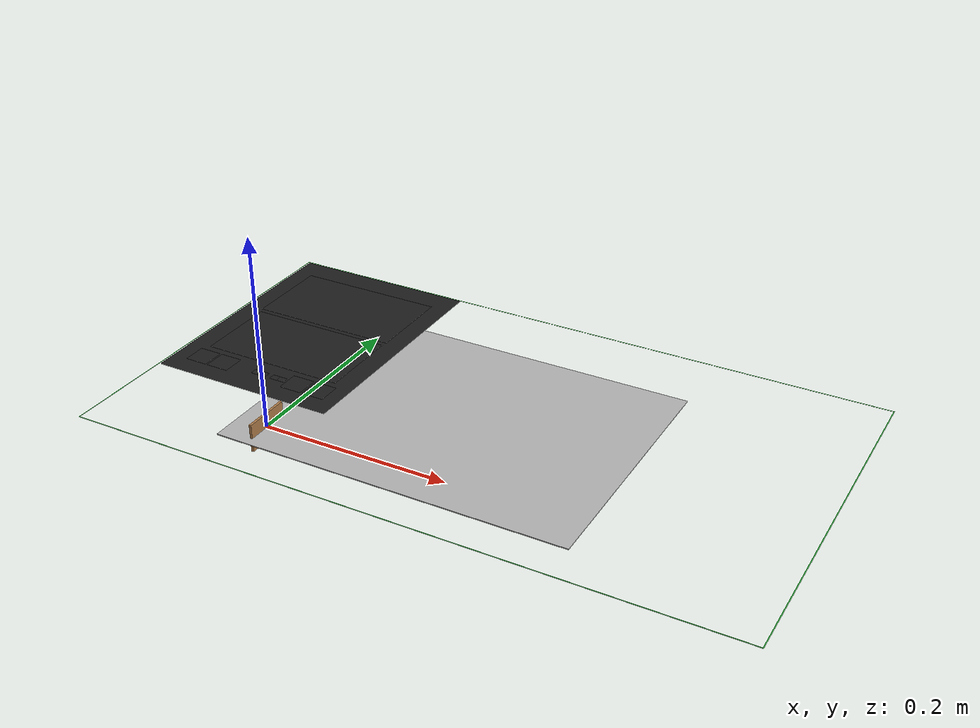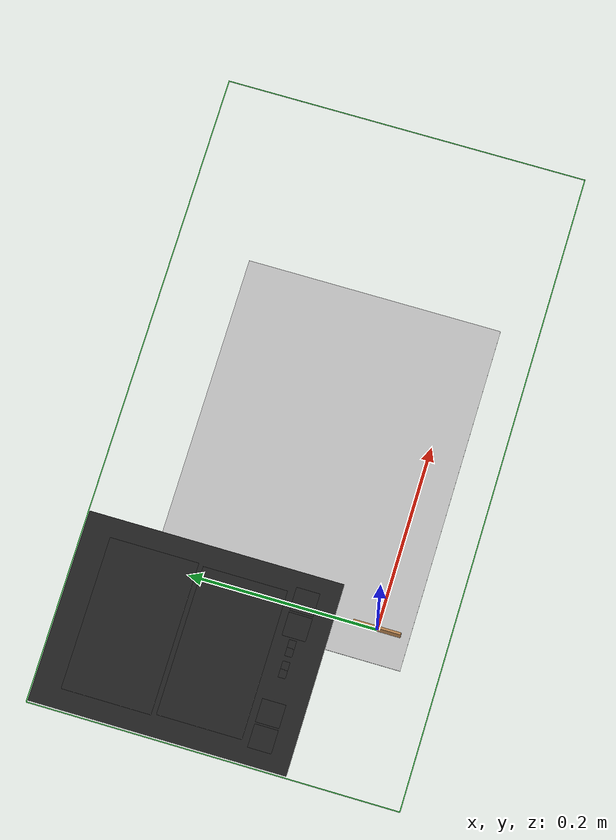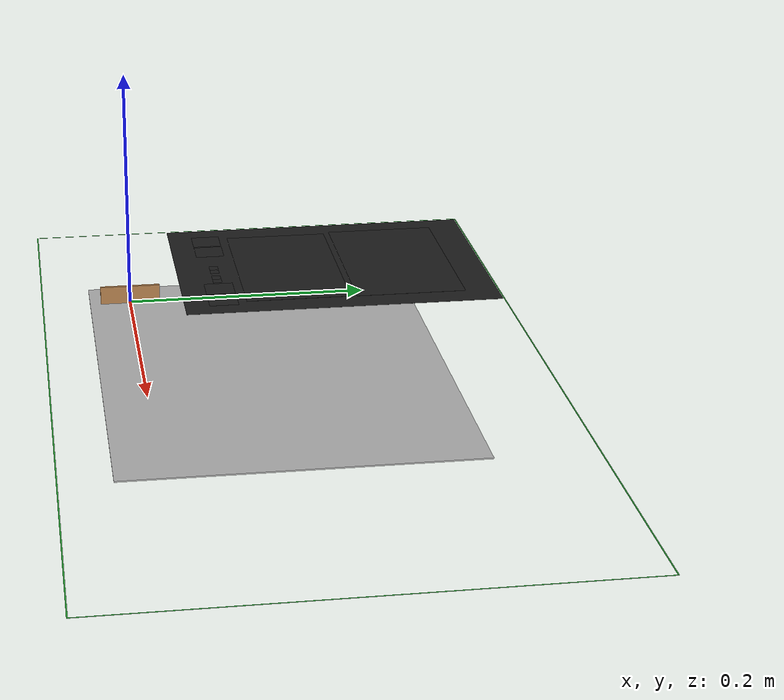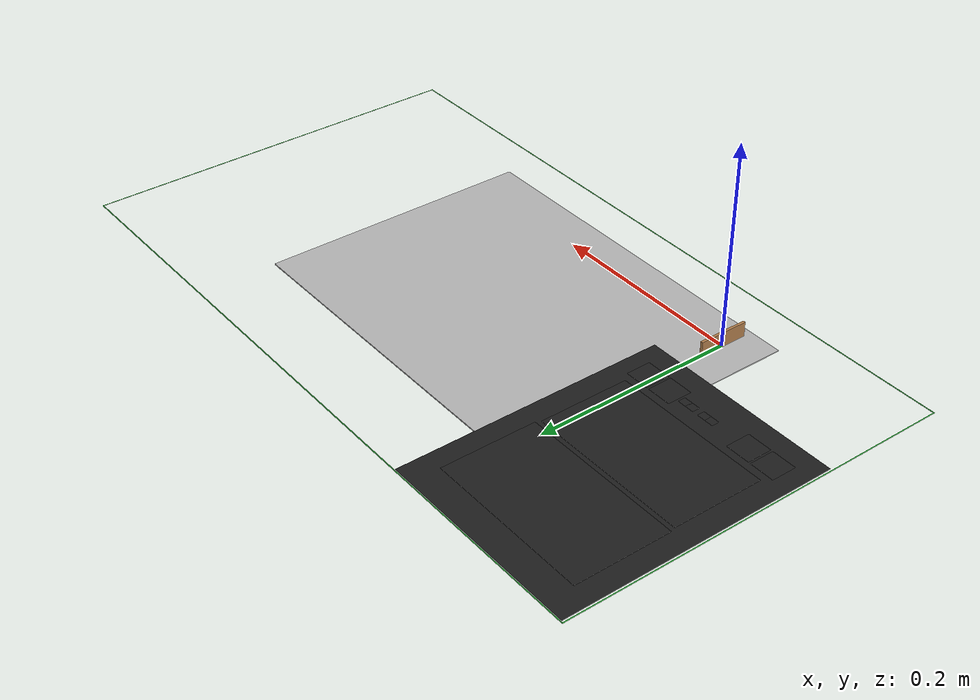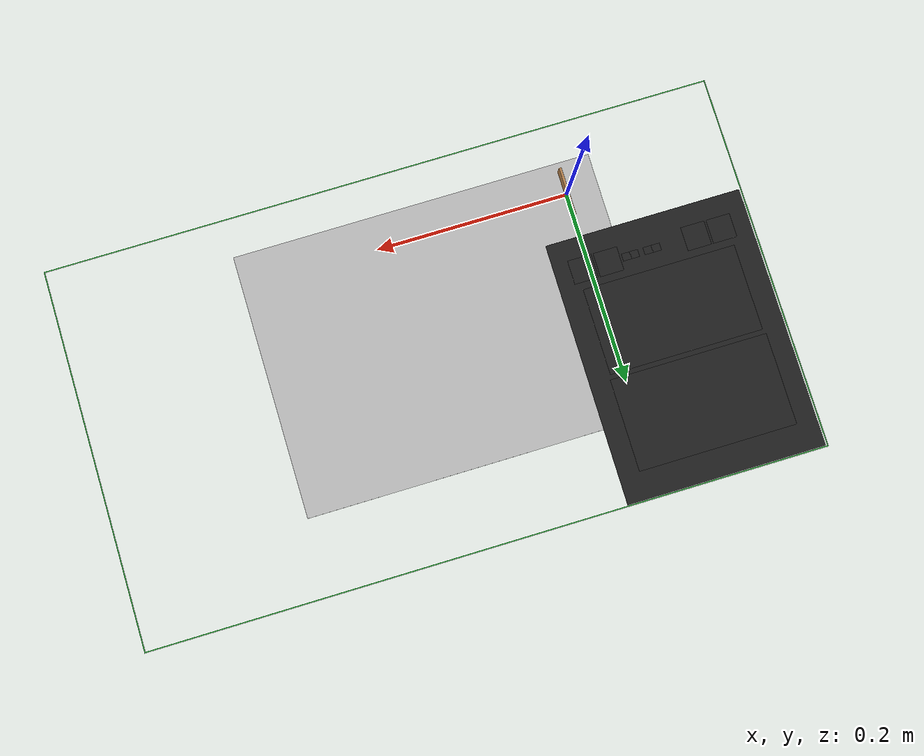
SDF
<sdf version="1.5">
 <world name="default">
  <include><uri>model://assembly_teaching_user_interface</uri></include>
  <model name="projection_area">
   <static>1</static>
   <pose>-0.172 -0.074 0 0 0 0</pose>
   <model name="top">
    <pose>0.35 0.392 0 0 0 0</pose>
    <link name="link">
     <visual name="visual">
      <geometry><plane><size>0.7 0.001</size></plane></geometry>
      <material><script><name>Gazebo/Green</name><uri>__default__</uri></script></material>
     </visual>
     <gravity>0</gravity>
    </link>
   </model>
   <model name="bottom">
    <pose>0.35 0 0 0 0 0</pose>
    <link name="link">
     <visual name="visual">
      <geometry><plane><size>0.7 0.001</size></plane></geometry>
      <material><script><name>Gazebo/Green</name><uri>__default__</uri></script></material>
     </visual>
     <gravity>0</gravity>
    </link>
   </model>
   <model name="left">
    <pose>0 0.196 0 0 0 0</pose>
    <link name="link">
     <visual name="visual">
      <geometry><plane><size>0.001 0.393</size></plane></geometry>
      <material><script><name>Gazebo/Green</name><uri>__default__</uri></script></material>
     </visual>
     <gravity>0</gravity>
    </link>
   </model>
   <model name="right">
    <pose>0.7 0.196 0 0 0 0</pose>
    <link name="link">
     <visual name="visual">
      <geometry><plane><size>0.001 0.393</size></plane></geometry>
      <material><script><name>Gazebo/Green</name><uri>__default__</uri></script></material>
     </visual>
     <gravity>0</gravity>
    </link>
   </model>
  </model>
  <model name="calibration_pattern">
   <static>1</static>
   <pose>0.153675 0.10245 -0.0005 0 0 0</pose>
   <link name="calibration_pattern_link">
    <visual name="visual">
     <cast_shadows>false</cast_shadows>
     <geometry><box><size>0.37565 0.2732 0.001</size></box></geometry>
     <material>
      <script>
       <uri>model://calibration_pattern/materials/scripts</uri>
       <uri>model://calibration_pattern/materials/textures</uri>
       <name>calibration_pattern</name>
      </script>
     </material>
    </visual>
    <gravity>0</gravity>
   </link>
  </model>
  <model name="camera_projection_mapping">
   <static>1</static>
   <link name="projector_link">
    <visual name="projector_link_visual">
     <geometry><box><size>0.0025 0.05 0.03</size></box></geometry>
     <material><script><name>Gazebo/Wood</name><uri>__default__</uri></script></material>
    </visual>
    <gravity>0</gravity>
    <sensor name="virtual_camera" type="camera">
     <camera name="projector_head">
      <horizontal_fov>1.15</horizontal_fov>
      <image><width>1920</width><height>1080</height><format>R8G8B8</format></image>
      <clip><near>0.1</near><far>10.0</far></clip>
      <noise><type>gaussian</type><mean>0</mean><stddev>0</stddev></noise>
      <lens><intrinsics><fx>2226</fx><fy>2233</fy><cx>1027</cx><cy>-57</cy><s>0.0</s></intrinsics></lens>
     </camera>
     <visualize>0</visualize>
     <plugin name="camera_controller" filename="libgazebo_ros_camera.so">
      <alwaysOn>true</alwaysOn>
      <updateRate>10</updateRate>
      <cameraName>virtual_camera</cameraName>
      <imageTopicName>image_raw</imageTopicName>
      <cameraInfoTopicName>camera_info</cameraInfoTopicName>
      <frameName>camera_link</frameName>
      <focalLengthX>2226</focalLengthX>
      <focalLengthY>2233</focalLengthY>
      <hackBaseline>0</hackBaseline>
      <CxPrime>1027</CxPrime>
      <Cx>1027</Cx>
      <Cy>-57</Cy>
      <distortionK1>0</distortionK1>
      <distortionK2>0</distortionK2>
      <distortionT1>0</distortionT1>
      <distortionT2>0</distortionT2>
      <distortionK3>0</distortionK3>
      <robotNamespace>/</robotNamespace>
     </plugin>
    </sensor>
   </link>
   <static>1</static>
  </model>
  <physics type="ode">
   <max_step_size>0.1</max_step_size>
   <real_time_factor>1</real_time_factor>
   <real_time_update_rate>10</real_time_update_rate>
   <max_contacts>0</max_contacts>
   <ode><solver><type>quick</type><min_step_size>0.1</min_step_size><iters>1</iters></solver></ode>
  </physics>
  <scene><ambient>1 1 1 1</ambient><background>0 0 0 1</background><shadows>0</shadows></scene>
 </world>
</sdf>

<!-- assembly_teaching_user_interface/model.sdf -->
<sdf version="1.6">
  <model name="assembly_teaching_user_interface">
      <static>1</static>
      <pose>0 0 0 0 0 0</pose>
      <model name="frame">
        <static>1</static>
        <pose>-0.067 0.181 0 0 0 0</pose>
        <link name="frame_link">
          <visual name="frame_visual">
            <transparency>0</transparency>
            <cast_shadows>false</cast_shadows>
            <geometry>
              <plane>
                <size>0.206 0.272</size>
              </plane>
            </geometry>
            <material>
              <script>
                <uri>__default__</uri>
                <name>Gazebo/Black</name>
              </script>
            </material>
            <plugin name="frame_plugin" filename="libgazebo_ros_video.so">
              <robotNamespace>gazebo_projecion_mapping/frame</robotNamespace>
              <height>1647</height>
              <width>2173</width>
              <defaultImagePath>file://images/assembly_frame.png</defaultImagePath>
              <useDoubleSideRenderingOnPlanes>false</useDoubleSideRenderingOnPlanes>
            </plugin>
          </visual>
          <gravity>0</gravity>
        </link>
      </model>

      <model name="text">
        <static>1</static>
        <pose>-0.0670 0.241 0.001 0 0 0</pose>
        <link name="text_link">
          <visual name="text_visual">
            <transparency>0</transparency>
            <cast_shadows>false</cast_shadows>
            <geometry>
              <plane>
                <size>0.164 0.095</size>
              </plane>
            </geometry>
            <material>
              <script>
                <uri>__default__</uri>
                <name>Gazebo/Black</name>
              </script>
            </material>
            <plugin name="text_plugin" filename="libgazebo_ros_video.so">
              <robotNamespace>gazebo_projecion_mapping/text</robotNamespace>
              <height>1647</height>
              <width>2173</width>
              <defaultImagePath>file://images/assembly_text.png</defaultImagePath>
              <useDoubleSideRenderingOnPlanes>false</useDoubleSideRenderingOnPlanes>
            </plugin>
          </visual>
          <gravity>0</gravity>
        </link>
      </model>

      <model name="video">
        <static>1</static>
        <pose>-0.0669 0.1435 0.0005 0 0 0</pose>
        <link name="video_link">
          <visual name="video_visual">
            <transparency>0</transparency>
            <cast_shadows>false</cast_shadows>
            <geometry>
              <plane>
                <size>0.16 0.09</size>
              </plane>
            </geometry>
            <material>
              <script>
                <uri>__default__</uri>
                <name>Gazebo/Black</name>
              </script>
            </material>
            <plugin name="video_plugin" filename="libgazebo_ros_video.so">
              <robotNamespace>gazebo_projecion_mapping/video</robotNamespace>
              <height>720</height>
              <width>1280</width>
              <defaultVideoPath>file://videos/mass_effect.mp4</defaultVideoPath>
              <videoFps>50</videoFps>
            </plugin>
          </visual>
          <gravity>0</gravity>
        </link>
      </model>

      <model name="first_button">
        <static>1</static>
        <pose>-0.14 0.0785 0.0005 0 0 0</pose>
        <link name="first_button_link">
          <visual name="first_button_visual">
            <transparency>0</transparency>
            <cast_shadows>false</cast_shadows>
            <geometry>
              <plane>
                <size>0.025 0.025</size>
              </plane>
            </geometry>
            <material>
              <script>
                <uri>__default__</uri>
                <name>Gazebo/Black</name>
              </script>
            </material>
            <plugin name="first_button_plugin" filename="libgazebo_ros_video.so">
              <robotNamespace>gazebo_projecion_mapping/first_button</robotNamespace>
              <height>640</height>
              <width>640</width>
              <defaultImagePath>file://images/buttons/first.png</defaultImagePath>
              <useDoubleSideRenderingOnPlanes>false</useDoubleSideRenderingOnPlanes>
            </plugin>
          </visual>
          <gravity>0</gravity>
        </link>
      </model>

      <model name="previous_button">
        <static>1</static>
        <pose>-0.113 0.0785 0.0005 0 0 0</pose>
        <link name="previous_button_link">
          <visual name="previous_button_visual">
            <transparency>0</transparency>
            <cast_shadows>false</cast_shadows>
            <geometry>
              <plane>
                <size>0.025 0.025</size>
              </plane>
            </geometry>
            <material>
              <script>
                <uri>__default__</uri>
                <name>Gazebo/Black</name>
              </script>
            </material>
            <plugin name="first_button_plugin" filename="libgazebo_ros_video.so">
              <robotNamespace>gazebo_projecion_mapping/previous_button</robotNamespace>
              <height>640</height>
              <width>640</width>
              <defaultImagePath>file://images/buttons/previous.png</defaultImagePath>
              <useDoubleSideRenderingOnPlanes>false</useDoubleSideRenderingOnPlanes>
            </plugin>
          </visual>
          <gravity>0</gravity>
        </link>
      </model>

      <model name="next_button">
        <static>1</static>
        <pose>-0.02 0.0785 0.0005 0 0 0</pose>
        <link name="next_button_link">
          <visual name="next_button_visual">
            <transparency>0</transparency>
            <cast_shadows>false</cast_shadows>
            <geometry>
              <plane>
                <size>0.025 0.025</size>
              </plane>
            </geometry>
            <material>
              <script>
                <uri>__default__</uri>
                <name>Gazebo/Black</name>
              </script>
            </material>
            <plugin name="next_button_plugin" filename="libgazebo_ros_video.so">
              <robotNamespace>gazebo_projecion_mapping/next_button</robotNamespace>
              <height>640</height>
              <width>640</width>
              <defaultImagePath>file://images/buttons/next.png</defaultImagePath>
              <useDoubleSideRenderingOnPlanes>false</useDoubleSideRenderingOnPlanes>
            </plugin>
          </visual>
          <gravity>0</gravity>
        </link>
      </model>

      <model name="last_button">
        <static>1</static>
        <pose>0.007 0.0785 0.0005 0 0 0</pose>
        <link name="last_button_link">
          <visual name="last_button_visual">
            <transparency>0</transparency>
            <cast_shadows>false</cast_shadows>
            <geometry>
              <plane>
                <size>0.025 0.025</size>
              </plane>
            </geometry>
            <material>
              <script>
                <uri>__default__</uri>
                <name>Gazebo/Black</name>
              </script>
            </material>
            <plugin name="last_button_plugin" filename="libgazebo_ros_video.so">
              <robotNamespace>gazebo_projecion_mapping/last_button</robotNamespace>
              <height>640</height>
              <width>640</width>
              <defaultImagePath>file://images/buttons/last.png</defaultImagePath>
              <useDoubleSideRenderingOnPlanes>false</useDoubleSideRenderingOnPlanes>
            </plugin>
          </visual>
          <gravity>0</gravity>
        </link>
      </model>

      <model name="first_number">
        <static>1</static>
        <pose>-0.0705 0.0785 0.0005 0 0 0</pose>
        <link name="first_number_link">
          <visual name="first_number_visual">
            <transparency>0</transparency>
            <cast_shadows>false</cast_shadows>
            <geometry>
              <plane>
                <size>0.00896 0.0077</size>
              </plane>
            </geometry>
            <material>
              <script>
                <uri>__default__</uri>
                <name>Gazebo/Black</name>
              </script>
            </material>
            <plugin name="first_number_plugin" filename="libgazebo_ros_video.so">
              <robotNamespace>gazebo_projecion_mapping/first_number</robotNamespace>
              <height>55</height>
              <width>64</width>
              <defaultImagePath>file://images/numbers/0.png</defaultImagePath>
              <useDoubleSideRenderingOnPlanes>false</useDoubleSideRenderingOnPlanes>
            </plugin>
          </visual>
          <gravity>0</gravity>
        </link>
      </model>

      <model name="second_number">
        <static>1</static>
        <pose>-0.062 0.0785 0.0005 0 0 0</pose>
        <link name="second_number_link">
          <visual name="second_number_visual">
            <transparency>0</transparency>
            <cast_shadows>false</cast_shadows>
            <geometry>
              <plane>
                <size>0.00896 0.0077</size>
              </plane>
            </geometry>
            <material>
              <script>
                <uri>__default__</uri>
                <name>Gazebo/Black</name>
              </script>
            </material>
            <plugin name="second_number_plugin" filename="libgazebo_ros_video.so">
              <robotNamespace>gazebo_projecion_mapping/second_number</robotNamespace>
              <height>55</height>
              <width>64</width>
              <defaultImagePath>file://images/numbers/0.png</defaultImagePath>
              <useDoubleSideRenderingOnPlanes>false</useDoubleSideRenderingOnPlanes>
            </plugin>
          </visual>
          <gravity>0</gravity>
        </link>
      </model>

      <model name="third_number">
        <static>1</static>
        <pose>-0.0475 0.0785 0.0005 0 0 0</pose>
        <link name="third_number_link">
          <visual name="third_number_visual">
            <transparency>0</transparency>
            <cast_shadows>false</cast_shadows>
            <geometry>
              <plane>
                <size>0.00896 0.0077</size>
              </plane>
            </geometry>
            <material>
              <script>
                <uri>__default__</uri>
                <name>Gazebo/Black</name>
              </script>
            </material>
            <plugin name="third_number_plugin" filename="libgazebo_ros_video.so">
              <robotNamespace>gazebo_projecion_mapping/third_number</robotNamespace>
              <height>55</height>
              <width>64</width>
              <defaultImagePath>file://images/numbers/0.png</defaultImagePath>
              <useDoubleSideRenderingOnPlanes>false</useDoubleSideRenderingOnPlanes>
            </plugin>
          </visual>
          <gravity>0</gravity>
        </link>
      </model>

      <model name="fourth_number">
        <static>1</static>
        <pose>-0.0391 0.0785 0.0005 0 0 0</pose>
        <link name="fourth_number_link">
          <visual name="fourth_number_visual">
            <transparency>0</transparency>
            <cast_shadows>false</cast_shadows>
            <geometry>
              <plane>
                <size>0.00896 0.0077</size>
              </plane>
            </geometry>
            <material>
              <script>
                <uri>__default__</uri>
                <name>Gazebo/Black</name>
              </script>
            </material>
            <plugin name="fourth_number_plugin" filename="libgazebo_ros_video.so">
              <robotNamespace>gazebo_projecion_mapping/fourth_number</robotNamespace>
              <height>55</height>
              <width>64</width>
              <defaultImagePath>file://images/numbers/0.png</defaultImagePath>
              <useDoubleSideRenderingOnPlanes>false</useDoubleSideRenderingOnPlanes>
            </plugin>
          </visual>
          <gravity>0</gravity>
        </link>
      </model>
    </model>
</sdf>
